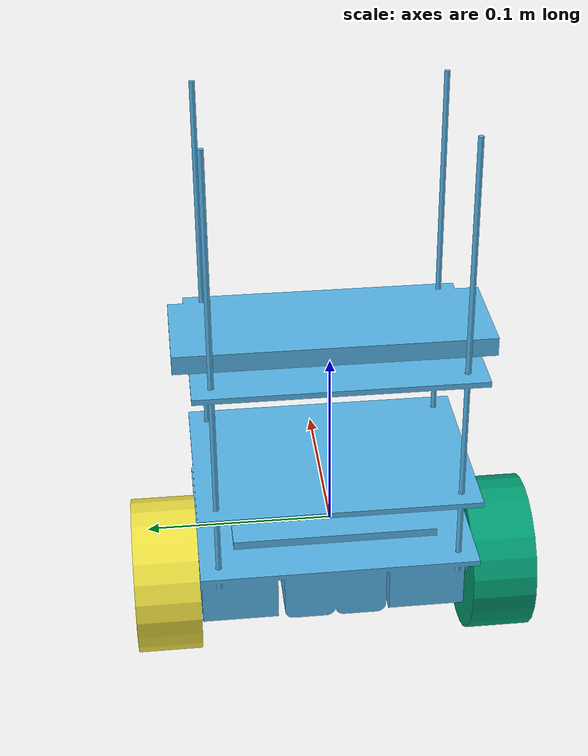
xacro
<?xml version="1.0"?>

<robot name="sbr" xmlns:xacro="https://www.ros.org/wiki/xacro">
    <link name="base_footprint">

    </link>

    <link name="chassis">
        <inertial>
          <mass value="1.482"/>
          <origin rpy="0 0 0" xyz="0 0 0"/>
          <inertia ixx="0.009028665" ixy="-0.000015630" iyy="0.006548161"
              ixz="0" iyz = "0" izz="0.003852133"/>
        </inertial>
        <visual>
          <origin rpy="0 0 0" xyz="0 0 0"/>
          <geometry>
            <mesh filename="$(find sbr_pkg)/meshes/CHASSIS_STL.stl" scale="0.001 0.001 0.001"/>
          </geometry>
        </visual>
        <collision>
        <origin rpy="0 0 0" xyz="0 0 0"/>
          <geometry>
            <mesh filename="$(find sbr_pkg)/meshes/CHASSIS_STL.stl" scale="0.001 0.001 0.001"/>
          </geometry>
        </collision>
    </link>
    <joint name="chassis_joint" type="fixed">
            <origin rpy="0 0 0" xyz="0 0 0"/>
            <child link="chassis"/>
            <parent link="base_footprint"/>

        </joint>

  <xacro:macro name="wheel" params="prefix">
    <link name="${prefix}_wheel">
      <inertial>
          <mass value="0.053"/>
          <origin rpy="1.5707 0 0" xyz="0 0 0"/>
          <inertia ixx="0.000011394" ixy = "0" iyy="0.000011394" ixz="0" iyz="0" izz="0.000011966"/>
        </inertial>

        <collision name="link_right_wheel_collision">
        <origin rpy="0 1.5707 1.5707" xyz="0 0 0" />
        <geometry>
            <cylinder length="0.035" radius="0.0425"/>
        </geometry>
        </collision>

        <visual name="link_right_wheel_visual">
        <origin rpy="0 1.5707 1.5707" xyz="0 0 0"/>
        <geometry>
            <cylinder length="0.035" radius="0.0425"/>
        </geometry>
        </visual>
    </link>
  </xacro:macro>

  <xacro:macro name="wheel_joint" params="prefix axis">
    <joint name="${prefix}_wheel_joint" type="continuous">
      <origin rpy="0 0 0" xyz="0 ${axis * 0.0915} -0.031"/>
      <child link="${prefix}_wheel" />
      <parent link="base_footprint"/>
      <axis rpy="0 0 0" xyz="0 ${axis} 0"/>
      <limit effort="10000" velocity="1000"/>
      <joint_properties damping="1.0" friction="1.0" />
    </joint>
  </xacro:macro>

  <xacro:wheel prefix="right"/>
  <xacro:wheel prefix="left"/>

  <xacro:wheel_joint prefix="right" axis="-1" />
  <xacro:wheel_joint prefix="left" axis="1" />

  <gazebo>
    <plugin name="differential_drive_controller" filename="libgazebo_ros_diff_drive.so">
      <update_rate>20</update_rate>
      <left_joint>left_wheel_joint</left_joint>
      <right_joint>right_wheel_joint</right_joint>
      <wheel_separation>0.105</wheel_separation>
      <wheel_diameter>0.085</wheel_diameter>
      <wheel_torque>0.1</wheel_torque>
      <command_topic>cmd_vel</command_topic>
      <odometry_topic>odom</odometry_topic>
      <odometry_frame>odom</odometry_frame>
      <robot_base_frame>chassis</robot_base_frame>
    </plugin>

  </gazebo>
  <gazebo reference="chassis">
  	<sensor name="my_imu" type="imu">
	    <always_on>true</always_on>

	    <update_rate>30</update_rate>
	    <plugin name="my_imu_plugin" filename="libgazebo_ros_imu_sensor.so">
	      <ros>

		<namespace>/imu</namespace>
		<remapping>~/out:=data</remapping>
	      </ros>
	      <frame_name>chassis</frame_name>
	      <initial_orientation_as_reference>false</initial_orientation_as_reference>
	    </plugin>
  	</sensor>
  </gazebo>
</robot>
